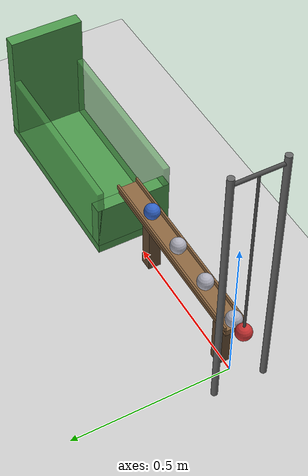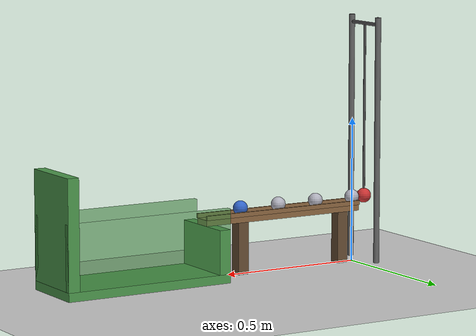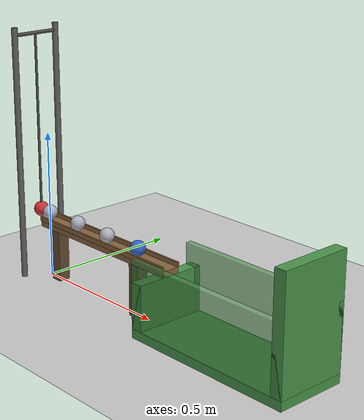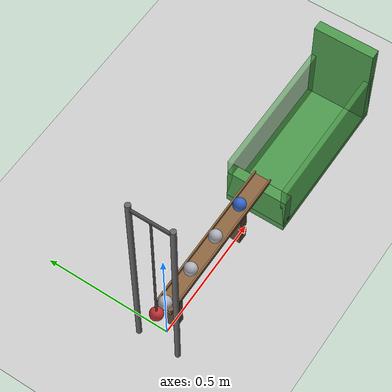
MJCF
<mujoco model="pendulum_ball_chain">
  <option timestep="0.002" gravity="0 0 -9.81"/>
  <worldbody>
    <light name="sun" pos="0.3 -1 2.5" dir="0 0.4 -1" diffuse="0.9 0.9 0.9"/>
    <geom name="floor" type="plane" size="3 3 0.1" rgba="0.8 0.8 0.8 1"/>

    <geom name="stand_post_left" type="cylinder" fromto="-0.05 0.08 0 -0.05 0.08 0.85" size="0.01" rgba="0.4 0.4 0.4 1" contype="0" conaffinity="0"/>
    <geom name="stand_post_right" type="cylinder" fromto="-0.05 -0.08 0 -0.05 -0.08 0.85" size="0.01" rgba="0.4 0.4 0.4 1" contype="0" conaffinity="0"/>
    <geom name="stand_axle" type="cylinder" fromto="-0.05 -0.08 0.825 -0.05 0.08 0.825" size="0.006" rgba="0.3 0.3 0.3 1" contype="0" conaffinity="0"/>

    <body name="pendulum" pos="-0.05 0 0.825">
      <joint name="pendulum_hinge" type="hinge" axis="0 1 0" pos="0 0 0"/>
      <geom name="pendulum_rod" type="capsule" fromto="0 0 0 0 0 -0.575" size="0.004" mass="0.001" contype="0" conaffinity="0" rgba="0.3 0.3 0.3 1"/>
      <geom name="pendulum_bob" type="sphere" pos="0 0 -0.6" size="0.025" density="7800" contype="0" conaffinity="0" rgba="0.8 0.2 0.2 1"/>
    </body>

    <body name="ball1" pos="0 0 0.225">
      <freejoint name="ball1_free"/>
      <geom name="ball1_geom" type="sphere" size="0.025" density="7800" friction="0.1 0.0001 0.0001" solref="0.005 1" contype="1" conaffinity="0" rgba="0.7 0.7 0.75 1"/>
    </body>
    <body name="ball2" pos="0.15 0 0.225">
      <freejoint name="ball2_free"/>
      <geom name="ball2_geom" type="sphere" size="0.025" density="7800" friction="0.1 0.0001 0.0001" solref="0.005 1" contype="1" conaffinity="0" rgba="0.7 0.7 0.75 1"/>
    </body>
    <body name="ball3" pos="0.30 0 0.225">
      <freejoint name="ball3_free"/>
      <geom name="ball3_geom" type="sphere" size="0.025" density="7800" friction="0.1 0.0001 0.0001" solref="0.005 1" contype="1" conaffinity="0" rgba="0.7 0.7 0.75 1"/>
    </body>
    <body name="ball4" pos="0.45 0 0.225">
      <freejoint name="ball4_free"/>
      <geom name="ball4_geom" type="sphere" size="0.025" density="7800" friction="0.1 0.0001 0.0001" solref="0.005 1" contype="1" conaffinity="0" rgba="0.2 0.4 0.8 1"/>
    </body>

    <body name="rail" pos="0 0 0">
      <geom name="rail_plank" type="box" pos="0.295 0 0.19" size="0.305 0.03 0.01" condim="6" friction="0.1 0.005 0.01" solref="0.005 1" rgba="0.55 0.4 0.25 1"/>
      <geom name="rail_lip_left" type="box" pos="0.295 0.031 0.2075" size="0.305 0.003 0.0075" condim="6" friction="0.1 0.005 0.01" solref="0.005 1" rgba="0.55 0.4 0.25 1"/>
      <geom name="rail_lip_right" type="box" pos="0.295 -0.031 0.2075" size="0.305 0.003 0.0075" condim="6" friction="0.1 0.005 0.01" solref="0.005 1" rgba="0.55 0.4 0.25 1"/>
      <geom name="rail_post_a" type="box" pos="0.05 0 0.09" size="0.02 0.02 0.09" rgba="0.4 0.3 0.2 1"/>
      <geom name="rail_post_b" type="box" pos="0.45 0 0.09" size="0.02 0.02 0.09" rgba="0.4 0.3 0.2 1"/>
    </body>

    <body name="box" pos="0 0 0">
      <geom name="box_floor" type="box" pos="0.86 0 0.015" size="0.30 0.12 0.015" condim="6" friction="1 0.01 0.01" solref="0.005 1" rgba="0.3 0.6 0.3 1"/>
      <geom name="box_wall_near" type="box" pos="0.58 0 0.105" size="0.02 0.12 0.075" condim="6" friction="1 0.01 0.01" solref="0.005 1" rgba="0.3 0.6 0.3 1"/>
      <geom name="box_wall_far" type="box" pos="1.14 0 0.215" size="0.02 0.12 0.185" condim="6" friction="1 0.01 0.01" solref="0.005 1" rgba="0.3 0.6 0.3 1"/>
      <geom name="box_wall_left" type="box" pos="0.86 0.11 0.14" size="0.30 0.01 0.11" condim="6" friction="1 0.01 0.01" solref="0.005 1" rgba="0.3 0.6 0.3 0.6"/>
      <geom name="box_wall_right" type="box" pos="0.86 -0.11 0.14" size="0.30 0.01 0.11" condim="6" friction="1 0.01 0.01" solref="0.005 1" rgba="0.3 0.6 0.3 0.6"/>
    </body>
  </worldbody>

  <contact>
    <pair name="pair_bob_ball1" geom1="pendulum_bob" geom2="ball1_geom" condim="1" solref="-60000 -10"/>
    <pair name="pair_ball1_ball2" geom1="ball1_geom" geom2="ball2_geom" condim="1" solref="-60000 -10"/>
    <pair name="pair_ball2_ball3" geom1="ball2_geom" geom2="ball3_geom" condim="1" solref="-60000 -10"/>
    <pair name="pair_ball3_ball4" geom1="ball3_geom" geom2="ball4_geom" condim="1" solref="-60000 -10"/>
    <pair name="pair_ball1_ball3" geom1="ball1_geom" geom2="ball3_geom" condim="1" solref="-60000 -10"/>
    <pair name="pair_ball2_ball4" geom1="ball2_geom" geom2="ball4_geom" condim="1" solref="-60000 -10"/>
    <pair name="pair_ball1_ball4" geom1="ball1_geom" geom2="ball4_geom" condim="1" solref="-60000 -10"/>
  </contact>

  <keyframe>
    <key name="start" qpos="1.40335 0 0 0.225 1 0 0 0 0.15 0 0.225 1 0 0 0 0.30 0 0.225 1 0 0 0 0.45 0 0.225 1 0 0 0"/>
  </keyframe>
</mujoco>
